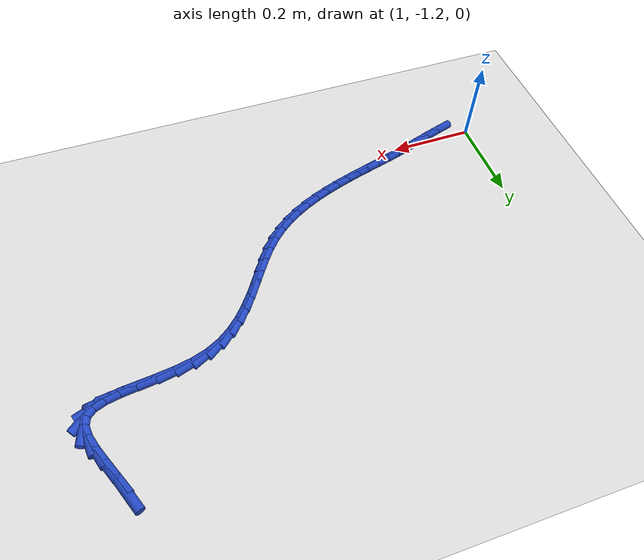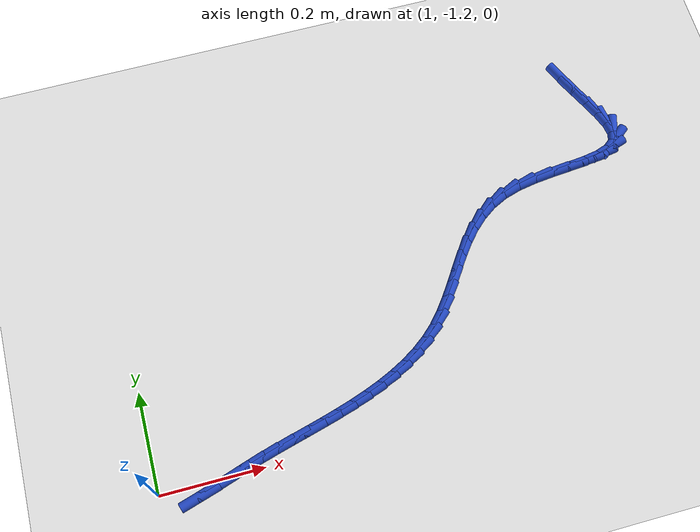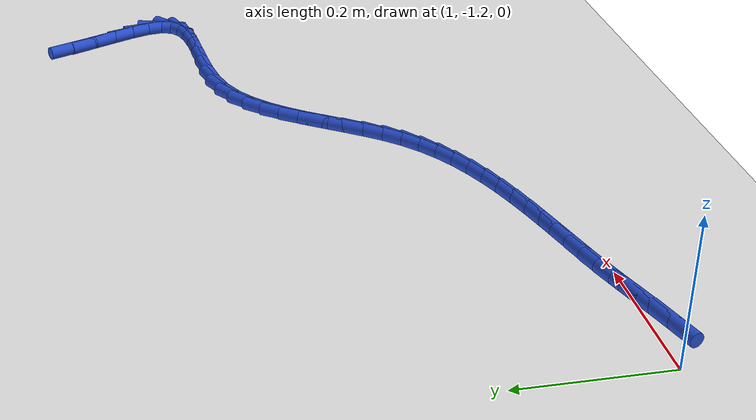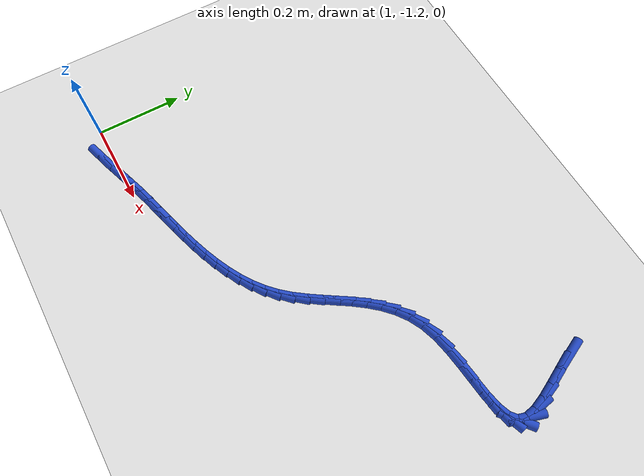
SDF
<sdf version="1.6">
 <world name="default">
  <model name="ground_plane">
   <static>1</static>
   <link name="link">
    <collision name="collision">
     <geometry><plane><normal>0 0 1</normal><size>100 100</size></plane></geometry>
     <surface><friction><ode><mu>100</mu><mu2>50</mu2></ode></friction></surface>
    </collision>
    <visual name="visual">
     <cast_shadows>0</cast_shadows>
     <geometry><plane><normal>0 0 1</normal><size>100 100</size></plane></geometry>
     <material>
      <script><uri>file://media/materials/scripts/gazebo.material</uri><name>Gazebo/WhiteGlow</name></script>
     </material>
    </visual>
   </link>
  </model>
  <model name="line">
   <link name="link_149">
    <pose>1.982166458147378 -0.5677236199339073 0.01 0 1.57 -1.1618361698367472</pose>
    <collision name="collision">
     <geometry><cylinder><radius>0.01</radius><length>0.08</length></cylinder></geometry>
    </collision>
    <visual name="visual">
     <material>
      <script><name>Gazebo/Blue</name><uri>file://media/materials/scripts/gazebo.material</uri></script>
     </material>
     <geometry><cylinder><radius>0.01</radius><length>0.08</length></cylinder></geometry>
    </visual>
   </link>
   <link name="link_150">
    <pose>1.9968942102145804 -0.6017058658230495 0.01 0 1.57 -1.1257170759802202</pose>
    <collision name="collision">
     <geometry><cylinder><radius>0.01</radius><length>0.08</length></cylinder></geometry>
    </collision>
    <visual name="visual">
     <material>
      <script><name>Gazebo/Blue</name><uri>file://media/materials/scripts/gazebo.material</uri></script>
     </material>
     <geometry><cylinder><radius>0.01</radius><length>0.08</length></cylinder></geometry>
    </visual>
   </link>
   <link name="link_151">
    <pose>2.012735958345373 -0.6349170471368456 0.01 0 1.57 -1.1404872465024636</pose>
    <collision name="collision">
     <geometry><cylinder><radius>0.01</radius><length>0.08</length></cylinder></geometry>
    </collision>
    <visual name="visual">
     <material>
      <script><name>Gazebo/Blue</name><uri>file://media/materials/scripts/gazebo.material</uri></script>
     </material>
     <geometry><cylinder><radius>0.01</radius><length>0.08</length></cylinder></geometry>
    </visual>
   </link>
   <link name="link_152">
    <pose>2.0270878246259025 -0.6661850589204428 0.01 0 1.57 -1.2213745838431178</pose>
    <collision name="collision">
     <geometry><cylinder><radius>0.01</radius><length>0.08</length></cylinder></geometry>
    </collision>
    <visual name="visual">
     <material>
      <script><name>Gazebo/Blue</name><uri>file://media/materials/scripts/gazebo.material</uri></script>
     </material>
     <geometry><cylinder><radius>0.01</radius><length>0.08</length></cylinder></geometry>
    </visual>
   </link>
   <link name="link_153">
    <pose>2.037345931142321 -0.6943377962189883 0.01 0 1.57 -1.4226988090795232</pose>
    <collision name="collision">
     <geometry><cylinder><radius>0.01</radius><length>0.08</length></cylinder></geometry>
    </collision>
    <visual name="visual">
     <material>
      <script><name>Gazebo/Blue</name><uri>file://media/materials/scripts/gazebo.material</uri></script>
     </material>
     <geometry><cylinder><radius>0.01</radius><length>0.08</length></cylinder></geometry>
    </visual>
   </link>
   <link name="link_154">
    <pose>2.0409063999807775 -0.7182031540776297 0.01 0 1.57 1.2704247806649522</pose>
    <collision name="collision">
     <geometry><cylinder><radius>0.01</radius><length>0.08</length></cylinder></geometry>
    </collision>
    <visual name="visual">
     <material>
      <script><name>Gazebo/Blue</name><uri>file://media/materials/scripts/gazebo.material</uri></script>
     </material>
     <geometry><cylinder><radius>0.01</radius><length>0.08</length></cylinder></geometry>
    </visual>
   </link>
   <link name="link_155">
    <pose>2.0351994257463333 -0.7366279996731132 0.01 0 1.57 0.6810781976032612</pose>
    <collision name="collision">
     <geometry><cylinder><radius>0.01</radius><length>0.08</length></cylinder></geometry>
    </collision>
    <visual name="visual">
     <material>
      <script><name>Gazebo/Blue</name><uri>file://media/materials/scripts/gazebo.material</uri></script>
     </material>
     <geometry><cylinder><radius>0.01</radius><length>0.08</length></cylinder></geometry>
    </visual>
   </link>
   <link name="link_156">
    <pose>2.019401355090432 -0.7494314859853454 0.01 0 1.57 0.33527721193344395</pose>
    <collision name="collision">
     <geometry><cylinder><radius>0.01</radius><length>0.08</length></cylinder></geometry>
    </collision>
    <visual name="visual">
     <material>
      <script><name>Gazebo/Blue</name><uri>file://media/materials/scripts/gazebo.material</uri></script>
     </material>
     <geometry><cylinder><radius>0.01</radius><length>0.08</length></cylinder></geometry>
    </visual>
   </link>
   <link name="link_157">
    <pose>1.9952362560379506 -0.7578513786098564 0.01 0 1.57 0.17420238468546917</pose>
    <collision name="collision">
     <geometry><cylinder><radius>0.01</radius><length>0.08</length></cylinder></geometry>
    </collision>
    <visual name="visual">
     <material>
      <script><name>Gazebo/Blue</name><uri>file://media/materials/scripts/gazebo.material</uri></script>
     </material>
     <geometry><cylinder><radius>0.01</radius><length>0.08</length></cylinder></geometry>
    </visual>
   </link>
   <link name="link_158">
    <pose>1.964629790184812 -0.7632376937148246 0.01 0 1.57 0.10503697270040106</pose>
    <collision name="collision">
     <geometry><cylinder><radius>0.01</radius><length>0.08</length></cylinder></geometry>
    </collision>
    <visual name="visual">
     <material>
      <script><name>Gazebo/Blue</name><uri>file://media/materials/scripts/gazebo.material</uri></script>
     </material>
     <geometry><cylinder><radius>0.01</radius><length>0.08</length></cylinder></geometry>
    </visual>
   </link>
   <link name="link_159">
    <pose>1.9295076191269374 -0.7669404474684283 0.01 0 1.57 0.08910342065357565</pose>
    <collision name="collision">
     <geometry><cylinder><radius>0.01</radius><length>0.08</length></cylinder></geometry>
    </collision>
    <visual name="visual">
     <material>
      <script><name>Gazebo/Blue</name><uri>file://media/materials/scripts/gazebo.material</uri></script>
     </material>
     <geometry><cylinder><radius>0.01</radius><length>0.08</length></cylinder></geometry>
    </visual>
   </link>
   <link name="link_160">
    <pose>1.8917954044602505 -0.7703096560388453 0.01 0 1.57 0.11378642020525478</pose>
    <collision name="collision">
     <geometry><cylinder><radius>0.01</radius><length>0.08</length></cylinder></geometry>
    </collision>
    <visual name="visual">
     <material>
      <script><name>Gazebo/Blue</name><uri>file://media/materials/scripts/gazebo.material</uri></script>
     </material>
     <geometry><cylinder><radius>0.01</radius><length>0.08</length></cylinder></geometry>
    </visual>
   </link>
   <link name="link_161">
    <pose>1.8534188077806732 -0.7746953355942536 0.01 0 1.57 0.1799559236541396</pose>
    <collision name="collision">
     <geometry><cylinder><radius>0.01</radius><length>0.08</length></cylinder></geometry>
    </collision>
    <visual name="visual">
     <material>
      <script><name>Gazebo/Blue</name><uri>file://media/materials/scripts/gazebo.material</uri></script>
     </material>
     <geometry><cylinder><radius>0.01</radius><length>0.08</length></cylinder></geometry>
    </visual>
   </link>
   <link name="link_162">
    <pose>1.8163034906841282 -0.7814475023028319 0.01 0 1.57 0.2989247439152114</pose>
    <collision name="collision">
     <geometry><cylinder><radius>0.01</radius><length>0.08</length></cylinder></geometry>
    </collision>
    <visual name="visual">
     <material>
      <script><name>Gazebo/Blue</name><uri>file://media/materials/scripts/gazebo.material</uri></script>
     </material>
     <geometry><cylinder><radius>0.01</radius><length>0.08</length></cylinder></geometry>
    </visual>
   </link>
   <link name="link_163">
    <pose>1.7823629922227902 -0.7919065552188003 0.01 0 1.57 0.4611729348044851</pose>
    <collision name="collision">
     <geometry><cylinder><radius>0.01</radius><length>0.08</length></cylinder></geometry>
    </collision>
    <visual name="visual">
     <material>
      <script><name>Gazebo/Blue</name><uri>file://media/materials/scripts/gazebo.material</uri></script>
     </material>
     <geometry><cylinder><radius>0.01</radius><length>0.08</length></cylinder></geometry>
    </visual>
   </link>
   <link name="link_164">
    <pose>1.7526044994766359 -0.8066938619468806 0.01 0 1.57 0.617648854750625</pose>
    <collision name="collision">
     <geometry><cylinder><radius>0.01</radius><length>0.08</length></cylinder></geometry>
    </collision>
    <visual name="visual">
     <material>
      <script><name>Gazebo/Blue</name><uri>file://media/materials/scripts/gazebo.material</uri></script>
     </material>
     <geometry><cylinder><radius>0.01</radius><length>0.08</length></cylinder></geometry>
    </visual>
   </link>
   <link name="link_165">
    <pose>1.7265164392572212 -0.8252259199853268 0.01 0 1.57 0.7519119042797214</pose>
    <collision name="collision">
     <geometry><cylinder><radius>0.01</radius><length>0.08</length></cylinder></geometry>
    </collision>
    <visual name="visual">
     <material>
      <script><name>Gazebo/Blue</name><uri>file://media/materials/scripts/gazebo.material</uri></script>
     </material>
     <geometry><cylinder><radius>0.01</radius><length>0.08</length></cylinder></geometry>
    </visual>
   </link>
   <link name="link_166">
    <pose>1.7034423070140352 -0.846804249196172 0.01 0 1.57 0.8571655561649121</pose>
    <collision name="collision">
     <geometry><cylinder><radius>0.01</radius><length>0.08</length></cylinder></geometry>
    </collision>
    <visual name="visual">
     <material>
      <script><name>Gazebo/Blue</name><uri>file://media/materials/scripts/gazebo.material</uri></script>
     </material>
     <geometry><cylinder><radius>0.01</radius><length>0.08</length></cylinder></geometry>
    </visual>
   </link>
   <link name="link_167">
    <pose>1.6827255981965643 -0.8707303694414497 0.01 0 1.57 0.9314567090387845</pose>
    <collision name="collision">
     <geometry><cylinder><radius>0.01</radius><length>0.08</length></cylinder></geometry>
    </collision>
    <visual name="visual">
     <material>
      <script><name>Gazebo/Blue</name><uri>file://media/materials/scripts/gazebo.material</uri></script>
     </material>
     <geometry><cylinder><radius>0.01</radius><length>0.08</length></cylinder></geometry>
    </visual>
   </link>
   <link name="link_168">
    <pose>1.663709808254296 -0.896305800583193 0.01 0 1.57 0.9753354855940255</pose>
    <collision name="collision">
     <geometry><cylinder><radius>0.01</radius><length>0.08</length></cylinder></geometry>
    </collision>
    <visual name="visual">
     <material>
      <script><name>Gazebo/Blue</name><uri>file://media/materials/scripts/gazebo.material</uri></script>
     </material>
     <geometry><cylinder><radius>0.01</radius><length>0.08</length></cylinder></geometry>
    </visual>
   </link>
   <link name="link_169">
    <pose>1.6457384326367186 -0.9228320624834355 0.01 0 1.57 0.9897789617302843</pose>
    <collision name="collision">
     <geometry><cylinder><radius>0.01</radius><length>0.08</length></cylinder></geometry>
    </collision>
    <visual name="visual">
     <material>
      <script><name>Gazebo/Blue</name><uri>file://media/materials/scripts/gazebo.material</uri></script>
     </material>
     <geometry><cylinder><radius>0.01</radius><length>0.08</length></cylinder></geometry>
    </visual>
   </link>
   <link name="link_170">
    <pose>1.628154966793319 -0.9496106750042103 0.01 0 1.57 0.9750240134102705</pose>
    <collision name="collision">
     <geometry><cylinder><radius>0.01</radius><length>0.08</length></cylinder></geometry>
    </collision>
    <visual name="visual">
     <material>
      <script><name>Gazebo/Blue</name><uri>file://media/materials/scripts/gazebo.material</uri></script>
     </material>
     <geometry><cylinder><radius>0.01</radius><length>0.08</length></cylinder></geometry>
    </visual>
   </link>
   <link name="link_171">
    <pose>1.6103029061735847 -0.975943158007551 0.01 0 1.57 0.9301916425841875</pose>
    <collision name="collision">
     <geometry><cylinder><radius>0.01</radius><length>0.08</length></cylinder></geometry>
    </collision>
    <visual name="visual">
     <material>
      <script><name>Gazebo/Blue</name><uri>file://media/materials/scripts/gazebo.material</uri></script>
     </material>
     <geometry><cylinder><radius>0.01</radius><length>0.08</length></cylinder></geometry>
    </visual>
   </link>
   <link name="link_172">
    <pose>1.5915257462270027 -1.0011310313554906 0.01 0 1.57 0.8536166019140705</pose>
    <collision name="collision">
     <geometry><cylinder><radius>0.01</radius><length>0.08</length></cylinder></geometry>
    </collision>
    <visual name="visual">
     <material>
      <script><name>Gazebo/Blue</name><uri>file://media/materials/scripts/gazebo.material</uri></script>
     </material>
     <geometry><cylinder><radius>0.01</radius><length>0.08</length></cylinder></geometry>
    </visual>
   </link>
   <link name="link_173">
    <pose>1.5711669831611548 -1.0244758156912779 0.01 0 1.57 0.7514796333143533</pose>
    <collision name="collision">
     <geometry><cylinder><radius>0.01</radius><length>0.08</length></cylinder></geometry>
    </collision>
    <visual name="visual">
     <material>
      <script><name>Gazebo/Blue</name><uri>file://media/materials/scripts/gazebo.material</uri></script>
     </material>
     <geometry><cylinder><radius>0.01</radius><length>0.08</length></cylinder></geometry>
    </visual>
   </link>
   <link name="link_174">
    <pose>1.5487281326812805 -1.0454418707334316 0.01 0 1.57 0.6528085023263953</pose>
    <collision name="collision">
     <geometry><cylinder><radius>0.01</radius><length>0.08</length></cylinder></geometry>
    </collision>
    <visual name="visual">
     <material>
      <script><name>Gazebo/Blue</name><uri>file://media/materials/scripts/gazebo.material</uri></script>
     </material>
     <geometry><cylinder><radius>0.01</radius><length>0.08</length></cylinder></geometry>
    </visual>
   </link>
   <link name="link_175">
    <pose>1.5243110924029928 -1.0641122496942623 0.01 0 1.57 0.5657289243006327</pose>
    <collision name="collision">
     <geometry><cylinder><radius>0.01</radius><length>0.08</length></cylinder></geometry>
    </collision>
    <visual name="visual">
     <material>
      <script><name>Gazebo/Blue</name><uri>file://media/materials/scripts/gazebo.material</uri></script>
     </material>
     <geometry><cylinder><radius>0.01</radius><length>0.08</length></cylinder></geometry>
    </visual>
   </link>
   <link name="link_176">
    <pose>1.4981603249494002 -1.0807169190109056 0.01 0 1.57 0.4907337392952352</pose>
    <collision name="collision">
     <geometry><cylinder><radius>0.01</radius><length>0.08</length></cylinder></geometry>
    </collision>
    <visual name="visual">
     <material>
      <script><name>Gazebo/Blue</name><uri>file://media/materials/scripts/gazebo.material</uri></script>
     </material>
     <geometry><cylinder><radius>0.01</radius><length>0.08</length></cylinder></geometry>
    </visual>
   </link>
   <link name="link_177">
    <pose>1.4705202929436103 -1.0954858451204998 0.01 0 1.57 0.42759340106610594</pose>
    <collision name="collision">
     <geometry><cylinder><radius>0.01</radius><length>0.08</length></cylinder></geometry>
    </collision>
    <visual name="visual">
     <material>
      <script><name>Gazebo/Blue</name><uri>file://media/materials/scripts/gazebo.material</uri></script>
     </material>
     <geometry><cylinder><radius>0.01</radius><length>0.08</length></cylinder></geometry>
    </visual>
   </link>
   <link name="link_178">
    <pose>1.441635459008733 -1.1086489944601812 0.01 0 1.57 0.3756876350765537</pose>
    <collision name="collision">
     <geometry><cylinder><radius>0.01</radius><length>0.08</length></cylinder></geometry>
    </collision>
    <visual name="visual">
     <material>
      <script><name>Gazebo/Blue</name><uri>file://media/materials/scripts/gazebo.material</uri></script>
     </material>
     <geometry><cylinder><radius>0.01</radius><length>0.08</length></cylinder></geometry>
    </visual>
   </link>
   <link name="link_179">
    <pose>1.4117502857678759 -1.120436333467086 0.01 0 1.57 0.3342633303978872</pose>
    <collision name="collision">
     <geometry><cylinder><radius>0.01</radius><length>0.08</length></cylinder></geometry>
    </collision>
    <visual name="visual">
     <material>
      <script><name>Gazebo/Blue</name><uri>file://media/materials/scripts/gazebo.material</uri></script>
     </material>
     <geometry><cylinder><radius>0.01</radius><length>0.08</length></cylinder></geometry>
    </visual>
   </link>
   <link name="link_180">
    <pose>1.381109235844148 -1.1310778285783512 0.01 0 1.57 0.3026062236629906</pose>
    <collision name="collision">
     <geometry><cylinder><radius>0.01</radius><length>0.08</length></cylinder></geometry>
    </collision>
    <visual name="visual">
     <material>
      <script><name>Gazebo/Blue</name><uri>file://media/materials/scripts/gazebo.material</uri></script>
     </material>
     <geometry><cylinder><radius>0.01</radius><length>0.08</length></cylinder></geometry>
    </visual>
   </link>
   <link name="link_181">
    <pose>1.3499567718606573 -1.1408034462311132 0.01 0 1.57 0.28014456158979734</pose>
    <collision name="collision">
     <geometry><cylinder><radius>0.01</radius><length>0.08</length></cylinder></geometry>
    </collision>
    <visual name="visual">
     <material>
      <script><name>Gazebo/Blue</name><uri>file://media/materials/scripts/gazebo.material</uri></script>
     </material>
     <geometry><cylinder><radius>0.01</radius><length>0.08</length></cylinder></geometry>
    </visual>
   </link>
   <link name="link_182">
    <pose>1.3185373564405134 -1.1498431528625093 0.01 0 1.57 0.2665094944318614</pose>
    <collision name="collision">
     <geometry><cylinder><radius>0.01</radius><length>0.08</length></cylinder></geometry>
    </collision>
    <visual name="visual">
     <material>
      <script><name>Gazebo/Blue</name><uri>file://media/materials/scripts/gazebo.material</uri></script>
     </material>
     <geometry><cylinder><radius>0.01</radius><length>0.08</length></cylinder></geometry>
    </visual>
   </link>
   <link name="link_183">
    <pose>1.287095452206824 -1.1584269149096758 0.01 0 1.57 0.2615731062000549</pose>
    <collision name="collision">
     <geometry><cylinder><radius>0.01</radius><length>0.08</length></cylinder></geometry>
    </collision>
    <visual name="visual">
     <material>
      <script><name>Gazebo/Blue</name><uri>file://media/materials/scripts/gazebo.material</uri></script>
     </material>
     <geometry><cylinder><radius>0.01</radius><length>0.08</length></cylinder></geometry>
    </visual>
   </link>
   <link name="link_184">
    <pose>1.2558755217826982 -1.1667846988097497 0.01 0 1.57 0.26547877417798943</pose>
    <collision name="collision">
     <geometry><cylinder><radius>0.01</radius><length>0.08</length></cylinder></geometry>
    </collision>
    <visual name="visual">
     <material>
      <script><name>Gazebo/Blue</name><uri>file://media/materials/scripts/gazebo.material</uri></script>
     </material>
     <geometry><cylinder><radius>0.01</radius><length>0.08</length></cylinder></geometry>
    </visual>
   </link>
   <link name="link_185">
    <pose>1.2251220277912438 -1.1751464709998671 0.01 0 1.57 0.2786728564565149</pose>
    <collision name="collision">
     <geometry><cylinder><radius>0.01</radius><length>0.08</length></cylinder></geometry>
    </collision>
    <visual name="visual">
     <material>
      <script><name>Gazebo/Blue</name><uri>file://media/materials/scripts/gazebo.material</uri></script>
     </material>
     <geometry><cylinder><radius>0.01</radius><length>0.08</length></cylinder></geometry>
    </visual>
   </link>
   <link name="link_186">
    <pose>1.1950794328555707 -1.1837421979171656 0.01 0 1.57 0.3001993497531833</pose>
    <collision name="collision">
     <geometry><cylinder><radius>0.01</radius><length>0.08</length></cylinder></geometry>
    </collision>
    <visual name="visual">
     <material>
      <script><name>Gazebo/Blue</name><uri>file://media/materials/scripts/gazebo.material</uri></script>
     </material>
     <geometry><cylinder><radius>0.01</radius><length>0.08</length></cylinder></geometry>
    </visual>
   </link>
   <link name="link_187">
    <pose>1.1658800903089994 -1.192780991300585 0.01 0 1.57 0.3160094492643183</pose>
    <collision name="collision">
     <geometry><cylinder><radius>0.01</radius><length>0.08</length></cylinder></geometry>
    </collision>
    <visual name="visual">
     <material>
      <script><name>Gazebo/Blue</name><uri>file://media/materials/scripts/gazebo.material</uri></script>
     </material>
     <geometry><cylinder><radius>0.01</radius><length>0.08</length></cylinder></geometry>
    </visual>
   </link>
   <link name="link_188">
    <pose>1.1367542716555132 -1.2023041565963406 0.01 0 1.57 0.31824407442045194</pose>
    <collision name="collision">
     <geometry><cylinder><radius>0.01</radius><length>0.08</length></cylinder></geometry>
    </collision>
    <visual name="visual">
     <material>
      <script><name>Gazebo/Blue</name><uri>file://media/materials/scripts/gazebo.material</uri></script>
     </material>
     <geometry><cylinder><radius>0.01</radius><length>0.08</length></cylinder></geometry>
    </visual>
   </link>
   <link name="link_189">
    <pose>1.106497256262721 -1.212272081516363 0.01 0 1.57 0.30820533557570884</pose>
    <collision name="collision">
     <geometry><cylinder><radius>0.01</radius><length>0.08</length></cylinder></geometry>
    </collision>
    <visual name="visual">
     <material>
      <script><name>Gazebo/Blue</name><uri>file://media/materials/scripts/gazebo.material</uri></script>
     </material>
     <geometry><cylinder><radius>0.01</radius><length>0.08</length></cylinder></geometry>
    </visual>
   </link>
   <link name="link_190">
    <pose>1.0739462840150895 -1.2226346778500328 0.01 0 1.57 0.2909119908735372</pose>
    <collision name="collision">
     <geometry><cylinder><radius>0.01</radius><length>0.08</length></cylinder></geometry>
    </collision>
    <visual name="visual">
     <material>
      <script><name>Gazebo/Blue</name><uri>file://media/materials/scripts/gazebo.material</uri></script>
     </material>
     <geometry><cylinder><radius>0.01</radius><length>0.08</length></cylinder></geometry>
    </visual>
   </link>
  </model>
 </world>
</sdf>
